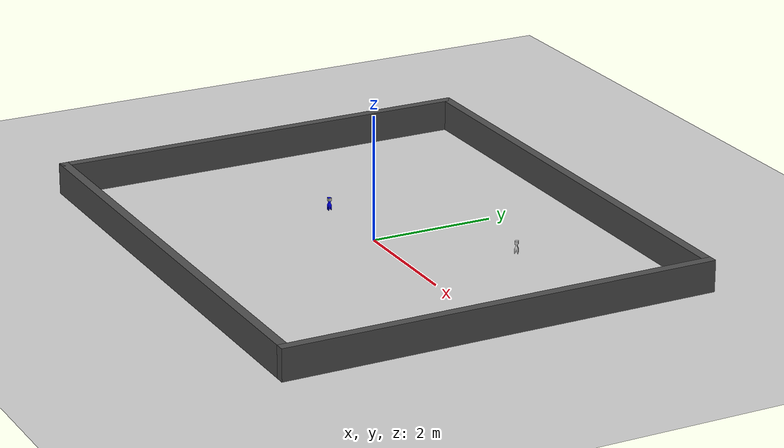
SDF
<sdf version="1.4">
 <world name="default">
  <scene><ambient>0.8 0.8 0.8 1</ambient><background>0.7 0.7 0.7 1</background><shadows>true</shadows></scene>
  <include><uri>model://sun</uri><pose>-1.0 2.0 1.0 0 0 0</pose></include>
  <include><uri>model://ground_plane</uri></include>
  <include><uri>model://Walls/paredes_sala</uri><pose>4 0 0 0 0 0</pose></include>
  <include><uri>model://Creepers/creeper_amarelo_10</uri><pose>-1.5 0 0 0 0 0</pose></include>
  <include><uri>model://Creepers/creeper_amarelo_20</uri><pose>1.4 1.67  0 0 0 0.9</pose></include>
  <physics type="ode">
   <real_time_update_rate>1000.0</real_time_update_rate>
   <max_step_size>0.001</max_step_size>
   <real_time_factor>1</real_time_factor>
   <ode>
    <solver>
     <type>quick</type>
     <iters>150</iters>
     <precon_iters>0</precon_iters>
     <sor>1.400000</sor>
     <use_dynamic_moi_rescaling>1</use_dynamic_moi_rescaling>
    </solver>
    <constraints>
     <cfm>0.00001</cfm>
     <erp>0.2</erp>
     <contact_max_correcting_vel>2000.000000</contact_max_correcting_vel>
     <contact_surface_layer>0.01000</contact_surface_layer>
    </constraints>
   </ode>
  </physics>
 </world>
</sdf>

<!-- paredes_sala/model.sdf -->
<sdf version='1.7'>
  <model name='parede'>
    <link name='Wall_0'>
      <pose>-4.075 -3.425 0.25 0 0 0</pose>
      <self_collide>0</self_collide>
      <enable_wind>0</enable_wind>
      <kinematic>0</kinematic>
      <visual name='Wall_0_Visual'>
        <geometry>
          <box>
            <size>8 0.15 0.5</size>
          </box>
        </geometry>
        <material>
          <script>
            <uri>file://media/materials/scripts/gazebo.material</uri>
            <name>Gazebo/DarkGrey</name>
          </script>
          <ambient>0.5 0.5 0.5 1</ambient>
          <diffuse>1 1 1 1</diffuse>
          <specular>0.2 0.2 0.2 1</specular>
          <emissive>0 0 0 1</emissive>
          <shader type='pixel'/>
        </material>
      </visual>
      <collision name='Wall_0_Collision'>
        <laser_retro>0</laser_retro>
        <max_contacts>10</max_contacts>
        <geometry>
          <box>
            <size>8 0.15 0.5</size>
          </box>
        </geometry>
        <surface>
          <friction>
            <ode>
              <mu>1</mu>
              <mu2>1</mu2>
              <fdir1>0 0 0</fdir1>
              <slip1>0</slip1>
              <slip2>0</slip2>
            </ode>
            <torsional>
              <coefficient>1</coefficient>
              <patch_radius>0</patch_radius>
              <surface_radius>0</surface_radius>
              <use_patch_radius>1</use_patch_radius>
              <ode>
                <slip>0</slip>
              </ode>
            </torsional>
          </friction>
          <bounce>
            <restitution_coefficient>0</restitution_coefficient>
            <threshold>1e+06</threshold>
          </bounce>
          <contact>
            <collide_without_contact>0</collide_without_contact>
            <collide_without_contact_bitmask>1</collide_without_contact_bitmask>
            <collide_bitmask>1</collide_bitmask>
            <ode>
              <soft_cfm>0</soft_cfm>
              <soft_erp>0.2</soft_erp>
              <kp>1e+13</kp>
              <kd>1</kd>
              <max_vel>0.01</max_vel>
              <min_depth>0</min_depth>
            </ode>
            <bullet>
              <split_impulse>1</split_impulse>
              <split_impulse_penetration_threshold>-0.01</split_impulse_penetration_threshold>
              <soft_cfm>0</soft_cfm>
              <soft_erp>0.2</soft_erp>
              <kp>1e+13</kp>
              <kd>1</kd>
            </bullet>
          </contact>
        </surface>
      </collision>
    </link>
    <link name='Wall_1'>
      <pose>0 0 0.25 0 0 0</pose>
      <self_collide>0</self_collide>
      <kinematic>0</kinematic>
      <visual name='Wall_1_Visual'>
        <geometry>
          <box>
            <size>0.15 7 0.5</size>
          </box>
        </geometry>
        <material>
          <script>
            <uri>file://media/materials/scripts/gazebo.material</uri>
            <name>Gazebo/DarkGrey</name>
          </script>
          <ambient>0.5 0.5 0.5 1</ambient>
          <diffuse>1 1 1 1</diffuse>
          <specular>0.2 0.2 0.2 1</specular>
          <emissive>0 0 0 1</emissive>
        </material>
        <transparency>0</transparency>
        <cast_shadows>1</cast_shadows>
      </visual>
      <collision name='Wall_1_Collision'>
        <laser_retro>0</laser_retro>
        <max_contacts>10</max_contacts>
        <geometry>
          <box>
            <size>0.15 7 0.5</size>
          </box>
        </geometry>
        <surface>
          <friction>
            <ode>
              <mu>1</mu>
              <mu2>1</mu2>
              <fdir1>0 0 0</fdir1>
              <slip1>0</slip1>
              <slip2>0</slip2>
            </ode>
            <torsional>
              <coefficient>1</coefficient>
              <patch_radius>0</patch_radius>
              <surface_radius>0</surface_radius>
              <use_patch_radius>1</use_patch_radius>
              <ode>
                <slip>0</slip>
              </ode>
            </torsional>
          </friction>
          <bounce>
            <restitution_coefficient>0</restitution_coefficient>
            <threshold>1e+06</threshold>
          </bounce>
          <contact>
            <collide_without_contact>0</collide_without_contact>
            <collide_without_contact_bitmask>1</collide_without_contact_bitmask>
            <ode>
              <soft_cfm>0</soft_cfm>
              <soft_erp>0.2</soft_erp>
              <kp>1e+13</kp>
              <kd>1</kd>
              <max_vel>0.01</max_vel>
              <min_depth>0</min_depth>
            </ode>
            <bullet>
              <split_impulse>1</split_impulse>
              <split_impulse_penetration_threshold>-0.01</split_impulse_penetration_threshold>
              <soft_cfm>0</soft_cfm>
              <soft_erp>0.2</soft_erp>
              <kp>1e+13</kp>
              <kd>1</kd>
            </bullet>
          </contact>
        </surface>
      </collision>
    </link>
    <link name='Wall_2'>
      <pose>-8 0 0.25 0 0 0 0</pose>
      <self_collide>0</self_collide>
      <enable_wind>0</enable_wind>
      <kinematic>0</kinematic>
      <visual name='Wall_2_Visual'>
        <geometry>
          <box>
            <size>0.15 7 0.5</size>
          </box>
        </geometry>
        <material>
          <script>
            <uri>file://media/materials/scripts/gazebo.material</uri>
            <name>Gazebo/DarkGrey</name>
          </script>
          <ambient>0.5 0.5 0.5 1</ambient>
          <diffuse>1 1 1 1</diffuse>
          <specular>0.2 0.2 0.2 1</specular>
          <emissive>0 0 0 1</emissive>
          <shader type='pixel'/>
        </material>
        <meta>
          <layer>0</layer>
        </meta>
        <transparency>0</transparency>
        <cast_shadows>1</cast_shadows>
      </visual>
      <collision name='Wall_2_Collision'>
        <laser_retro>0</laser_retro>
        <max_contacts>10</max_contacts>
        <geometry>
          <box>
            <size>0.15 7 0.5</size>
          </box>
        </geometry>
        <surface>
          <friction>
            <ode>
              <mu>1</mu>
              <mu2>1</mu2>
              <fdir1>0 0 0</fdir1>
              <slip1>0</slip1>
              <slip2>0</slip2>
            </ode>
            <torsional>
              <coefficient>1</coefficient>
              <patch_radius>0</patch_radius>
              <surface_radius>0</surface_radius>
              <use_patch_radius>1</use_patch_radius>
              <ode>
                <slip>0</slip>
              </ode>
            </torsional>
          </friction>
          <bounce>
            <restitution_coefficient>0</restitution_coefficient>
            <threshold>1e+06</threshold>
          </bounce>
          <contact>
            <collide_without_contact>0</collide_without_contact>
            <collide_without_contact_bitmask>1</collide_without_contact_bitmask>
            <collide_bitmask>1</collide_bitmask>
            <ode>
              <soft_cfm>0</soft_cfm>
              <soft_erp>0.2</soft_erp>
              <kp>1e+13</kp>
              <kd>1</kd>
              <max_vel>0.01</max_vel>
              <min_depth>0</min_depth>
            </ode>
            <bullet>
              <split_impulse>1</split_impulse>
              <split_impulse_penetration_threshold>-0.01</split_impulse_penetration_threshold>
              <soft_cfm>0</soft_cfm>
              <soft_erp>0.2</soft_erp>
              <kp>1e+13</kp>
              <kd>1</kd>
            </bullet>
          </contact>
        </surface>
      </collision>
    </link>
    <link name='Wall_3'>
      <pose>-4.075 3.425 0.25 0 0 0</pose>
      <self_collide>0</self_collide>
      <enable_wind>0</enable_wind>
      <kinematic>0</kinematic>
      <visual name='Wall_3_Visual'>
        <geometry>
          <box>
            <size>8 0.15 0.5</size>
          </box>
        </geometry>
        <material>
          <script>
            <uri>file://media/materials/scripts/gazebo.material</uri>
            <name>Gazebo/DarkGrey</name>
          </script>
          <ambient>0.5 0.5 0.5 1</ambient>
          <diffuse>1 1 1 1</diffuse>
          <specular>0.2 0.2 0.2 1</specular>
          <emissive>0 0 0 1</emissive>
          <shader type='pixel'/>
        </material>
        <meta>
          <layer>0</layer>
        </meta>
        <transparency>0</transparency>
        <cast_shadows>1</cast_shadows>
      </visual>
      <collision name='Wall_3_Collision'>
        <laser_retro>0</laser_retro>
        <max_contacts>10</max_contacts>
        <geometry>
          <box>
            <size>8 0.15 0.5</size>
          </box>
        </geometry>
        <surface>
          <friction>
            <ode>
              <mu>1</mu>
              <mu2>1</mu2>
              <fdir1>0 0 0</fdir1>
              <slip1>0</slip1>
              <slip2>0</slip2>
            </ode>
            <torsional>
              <coefficient>1</coefficient>
              <patch_radius>0</patch_radius>
              <surface_radius>0</surface_radius>
              <use_patch_radius>1</use_patch_radius>
              <ode>
                <slip>0</slip>
              </ode>
            </torsional>
          </friction>
          <bounce>
            <restitution_coefficient>0</restitution_coefficient>
            <threshold>1e+06</threshold>
          </bounce>
          <contact>
            <collide_without_contact>0</collide_without_contact>
            <collide_without_contact_bitmask>1</collide_without_contact_bitmask>
            <collide_bitmask>1</collide_bitmask>
            <ode>
              <soft_cfm>0</soft_cfm>
              <soft_erp>0.2</soft_erp>
              <kp>1e+13</kp>
              <kd>1</kd>
              <max_vel>0.01</max_vel>
              <min_depth>0</min_depth>
            </ode>
            <bullet>
              <split_impulse>1</split_impulse>
              <split_impulse_penetration_threshold>-0.01</split_impulse_penetration_threshold>
              <soft_cfm>0</soft_cfm>
              <soft_erp>0.2</soft_erp>
              <kp>1e+13</kp>
              <kd>1</kd>
            </bullet>
          </contact>
        </surface>
      </collision>
    </link>
    <static>1</static>
    <allow_auto_disable>1</allow_auto_disable>
  </model>
</sdf>

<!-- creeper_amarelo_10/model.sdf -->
<sdf version="1.6">
  <model name="creeper_amarelo_10">
    <link name="link_creeper_amarelo_10">
        <inertial>
            <mass>0.00004</mass>
            <inertia>
            <ixx>2.01e-06</ixx>
            <ixy>0</ixy>
            <ixz>0</ixz>
            <iyy>2.01e-06</iyy>
            <iyz>0</iyz>
            <izz>5.9e-07</izz>
            </inertia>
            <pose frame=''>0 0 0 0 -0 0</pose>
        </inertial>
        <self_collide>0</self_collide>
        <enable_wind>0</enable_wind>
        <kinematic>0</kinematic>
        <gravity>1</gravity>
        <visual name="visual">
            <geometry>
            <mesh>
                <uri>model://Creepers/creeper_amarelo_10/materials/textures/Creeper.dae</uri>
                <scale>0.01 0.01 0.01</scale>
            </mesh>
            </geometry>
            <transparency>0</transparency>
            <cast_shadows>1</cast_shadows>
        </visual>
        <collision name="collision">
            <laser_retro>0</laser_retro>
            <max_contacts>10</max_contacts>
            <geometry>
            <mesh>
                <uri>model://Creepers/creeper_amarelo_10/materials/textures/Creeper.dae</uri>
                <scale>0.01 0.01 0.01</scale>
            </mesh>
            </geometry>
            <surface>
          <friction>
            <ode>
              <mu>10</mu>
              <mu2>10</mu2>
              <fdir1>0 0 0</fdir1>
              <slip1>0</slip1>
              <slip2>0</slip2>
            </ode>
            <torsional>
              <coefficient>1</coefficient>
              <patch_radius>0</patch_radius>
              <surface_radius>0</surface_radius>
              <use_patch_radius>1</use_patch_radius>
              <ode>
                <slip>0</slip>
              </ode>
            </torsional>
          </friction>
          <bounce>
            <restitution_coefficient>0</restitution_coefficient>
            <threshold>1e+06</threshold>
          </bounce>
          <contact>
            <collide_without_contact>0</collide_without_contact>
            <collide_without_contact_bitmask>1</collide_without_contact_bitmask>
            <collide_bitmask>1</collide_bitmask>
            <ode>
              <soft_cfm>0</soft_cfm>
              <soft_erp>0.2</soft_erp>
              <kp>1e+13</kp>
              <kd>1</kd>
              <max_vel>0.01</max_vel>
              <min_depth>0</min_depth>
            </ode>
            <bullet>
              <split_impulse>1</split_impulse>
              <split_impulse_penetration_threshold>-0.01</split_impulse_penetration_threshold>
              <soft_cfm>0</soft_cfm>
              <soft_erp>0.2</soft_erp>
              <kp>1e+13</kp>
              <kd>1</kd>
            </bullet>
          </contact>
        </surface>
        </collision>
    </link>
    <static>0</static>
    <allow_auto_disable>1</allow_auto_disable>
        <link name='Link0_creeper_amarelo_10'>
      <inertial>
        <mass>1.17438e-05</mass>
        <inertia>
          <ixx>3.26224e-09</ixx>
          <ixy>0</ixy>
          <ixz>0</ixz>
          <iyy>4.1282e-10</iyy>
          <iyz>0</iyz>
          <izz>3.29988e-09</izz>
        </inertia>
        <pose>0 0 0 0 -0 0</pose>
      </inertial>
      <pose>-0.0007 0.00118 0.189635 -1.2e-05 1e-06 8e-06</pose>
      <self_collide>0</self_collide>
      <enable_wind>0</enable_wind>
      <kinematic>0</kinematic>
      <visual name='visual'>
        <pose frame=''>0 0 0.2 0 -0 0</pose>
        <geometry>
          <box>
            <size>0.0000006 0.000008 0.000001</size>
          </box>
        </geometry>
        <transparency>0</transparency>
        <cast_shadows>1</cast_shadows>
        <material>
          <shader type='vertex'>
            <normal_map>__default__</normal_map>
          </shader>
        </material>
      </visual>
      <collision name='collision'>
        <laser_retro>0</laser_retro>
        <max_contacts>10</max_contacts>
        <pose>0 0 0 0 -0 0</pose>
        <geometry>
          <box>
            <size>0.01517 0.062 0.035</size>
          </box>
        </geometry>
        <surface>
          <friction>
            <ode>
              <mu>1</mu>
              <mu2>1</mu2>
              <fdir1>0 0 0</fdir1>
              <slip1>0</slip1>
              <slip2>0</slip2>
            </ode>
            <torsional>
              <coefficient>1</coefficient>
              <patch_radius>0</patch_radius>
              <surface_radius>0</surface_radius>
              <use_patch_radius>1</use_patch_radius>
              <ode>
                <slip>0</slip>
              </ode>
            </torsional>
          </friction>
          <bounce>
            <restitution_coefficient>0</restitution_coefficient>
            <threshold>1e+06</threshold>
          </bounce>
          <contact>
            <collide_without_contact>0</collide_without_contact>
            <collide_without_contact_bitmask>1</collide_without_contact_bitmask>
            <collide_bitmask>1</collide_bitmask>
            <ode>
              <soft_cfm>0</soft_cfm>
              <soft_erp>0.2</soft_erp>
              <kp>1e+13</kp>
              <kd>1</kd>
              <max_vel>0.01</max_vel>
              <min_depth>0</min_depth>
            </ode>
            <bullet>
              <split_impulse>1</split_impulse>
              <split_impulse_penetration_threshold>-0.01</split_impulse_penetration_threshold>
              <soft_cfm>0</soft_cfm>
              <soft_erp>0.2</soft_erp>
              <kp>1e+13</kp>
              <kd>1</kd>
            </bullet>
          </contact>
        </surface>
      </collision>
    </link>
    <joint name='link_0_JOINT_0_creeper_10_amarelo' type='fixed'>
      <parent>Link_creeper_amarelo_10</parent>
      <child>Link0_creeper_amarelo_10creeper_amarelo_10</child>
      <pose>0 0 0 0 -0 0</pose>
      <physics>
        <ode>
          <limit>
            <cfm>0</cfm>
            <erp>0.2</erp>
          </limit>
          <suspension>
            <cfm>0</cfm>
            <erp>0.2</erp>
          </suspension>
        </ode>
      </physics>
    </joint>
    <static>0</static>
    <allow_auto_disable>1</allow_auto_disable>
  </model>
</sdf>

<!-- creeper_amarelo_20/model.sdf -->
<sdf version="1.6">
  <model name="creeper_amarelo_20">
    <link name="link_creeper_amarelo_20">
        <inertial>
            <mass>0.00004</mass>
            <inertia>
            <ixx>2.01e-06</ixx>
            <ixy>0</ixy>
            <ixz>0</ixz>
            <iyy>2.01e-06</iyy>
            <iyz>0</iyz>
            <izz>5.9e-07</izz>
            </inertia>
            <pose frame=''>0 0 0 0 -0 0</pose>
        </inertial>
        <self_collide>0</self_collide>
        <enable_wind>0</enable_wind>
        <kinematic>0</kinematic>
        <gravity>1</gravity>
        <visual name="visual">
            <geometry>
            <mesh>
                <uri>model://Creepers/creeper_amarelo_20/materials/textures/Creeper.dae</uri>
                <scale>0.01 0.01 0.01</scale>
            </mesh>
            </geometry>
            <transparency>0</transparency>
            <cast_shadows>1</cast_shadows>
        </visual>
        <collision name="collision">
            <laser_retro>0</laser_retro>
            <max_contacts>20</max_contacts>
            <geometry>
            <mesh>
                <uri>model://Creepers/creeper_amarelo_20/materials/textures/Creeper.dae</uri>
                <scale>0.01 0.01 0.01</scale>
            </mesh>
            </geometry>
            <surface>
          <friction>
            <ode>
              <mu>20</mu>
              <mu2>20</mu2>
              <fdir1>0 0 0</fdir1>
              <slip1>0</slip1>
              <slip2>0</slip2>
            </ode>
            <torsional>
              <coefficient>1</coefficient>
              <patch_radius>0</patch_radius>
              <surface_radius>0</surface_radius>
              <use_patch_radius>1</use_patch_radius>
              <ode>
                <slip>0</slip>
              </ode>
            </torsional>
          </friction>
          <bounce>
            <restitution_coefficient>0</restitution_coefficient>
            <threshold>1e+06</threshold>
          </bounce>
          <contact>
            <collide_without_contact>0</collide_without_contact>
            <collide_without_contact_bitmask>1</collide_without_contact_bitmask>
            <collide_bitmask>1</collide_bitmask>
            <ode>
              <soft_cfm>0</soft_cfm>
              <soft_erp>0.2</soft_erp>
              <kp>1e+13</kp>
              <kd>1</kd>
              <max_vel>0.01</max_vel>
              <min_depth>0</min_depth>
            </ode>
            <bullet>
              <split_impulse>1</split_impulse>
              <split_impulse_penetration_threshold>-0.01</split_impulse_penetration_threshold>
              <soft_cfm>0</soft_cfm>
              <soft_erp>0.2</soft_erp>
              <kp>1e+13</kp>
              <kd>1</kd>
            </bullet>
          </contact>
        </surface>
        </collision>
    </link>
    <static>0</static>
    <allow_auto_disable>1</allow_auto_disable>
        <link name='Link0_creeper_amarelo_20'>
      <inertial>
        <mass>1.17438e-05</mass>
        <inertia>
          <ixx>3.26224e-09</ixx>
          <ixy>0</ixy>
          <ixz>0</ixz>
          <iyy>4.1282e-20</iyy>
          <iyz>0</iyz>
          <izz>3.29988e-09</izz>
        </inertia>
        <pose>0 0 0 0 -0 0</pose>
      </inertial>
      <pose>-0.0007 0.00118 0.189635 -1.2e-05 1e-06 8e-06</pose>
      <self_collide>0</self_collide>
      <enable_wind>0</enable_wind>
      <kinematic>0</kinematic>
      <visual name='visual'>
        <pose frame=''>0 0 0.2 0 -0 0</pose>
        <geometry>
          <box>
            <size>0.0000006 0.000008 0.000001</size>
          </box>
        </geometry>
        <transparency>0</transparency>
        <cast_shadows>1</cast_shadows>
        <material>
          <shader type='vertex'>
            <normal_map>__default__</normal_map>
          </shader>
        </material>
      </visual>
      <collision name='collision'>
        <laser_retro>0</laser_retro>
        <max_contacts>20</max_contacts>
        <pose>0 0 0 0 -0 0</pose>
        <geometry>
          <box>
            <size>0.01517 0.062 0.035</size>
          </box>
        </geometry>
        <surface>
          <friction>
            <ode>
              <mu>1</mu>
              <mu2>1</mu2>
              <fdir1>0 0 0</fdir1>
              <slip1>0</slip1>
              <slip2>0</slip2>
            </ode>
            <torsional>
              <coefficient>1</coefficient>
              <patch_radius>0</patch_radius>
              <surface_radius>0</surface_radius>
              <use_patch_radius>1</use_patch_radius>
              <ode>
                <slip>0</slip>
              </ode>
            </torsional>
          </friction>
          <bounce>
            <restitution_coefficient>0</restitution_coefficient>
            <threshold>1e+06</threshold>
          </bounce>
          <contact>
            <collide_without_contact>0</collide_without_contact>
            <collide_without_contact_bitmask>1</collide_without_contact_bitmask>
            <collide_bitmask>1</collide_bitmask>
            <ode>
              <soft_cfm>0</soft_cfm>
              <soft_erp>0.2</soft_erp>
              <kp>1e+13</kp>
              <kd>1</kd>
              <max_vel>0.01</max_vel>
              <min_depth>0</min_depth>
            </ode>
            <bullet>
              <split_impulse>1</split_impulse>
              <split_impulse_penetration_threshold>-0.01</split_impulse_penetration_threshold>
              <soft_cfm>0</soft_cfm>
              <soft_erp>0.2</soft_erp>
              <kp>1e+13</kp>
              <kd>1</kd>
            </bullet>
          </contact>
        </surface>
      </collision>
    </link>
    <joint name='link_0_JOINT_0_creeper_20_amarelo' type='fixed'>
      <parent>Link_creeper_amarelo_20</parent>
      <child>Link0_creeper_amarelo_20creeper_amarelo_20</child>
      <pose>0 0 0 0 -0 0</pose>
      <physics>
        <ode>
          <limit>
            <cfm>0</cfm>
            <erp>0.2</erp>
          </limit>
          <suspension>
            <cfm>0</cfm>
            <erp>0.2</erp>
          </suspension>
        </ode>
      </physics>
    </joint>
    <static>0</static>
    <allow_auto_disable>1</allow_auto_disable>
  </model>
</sdf>
